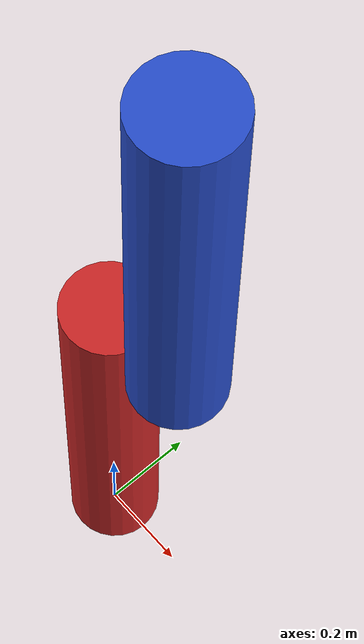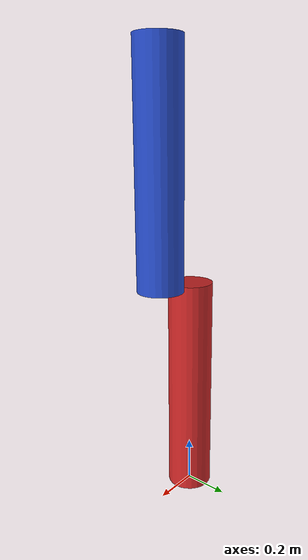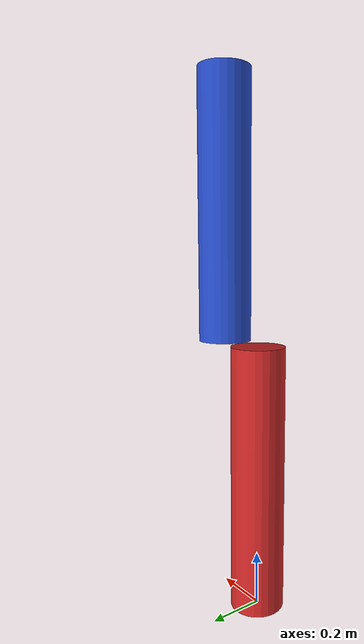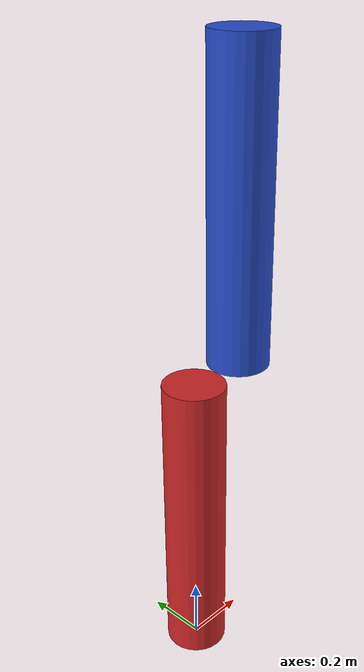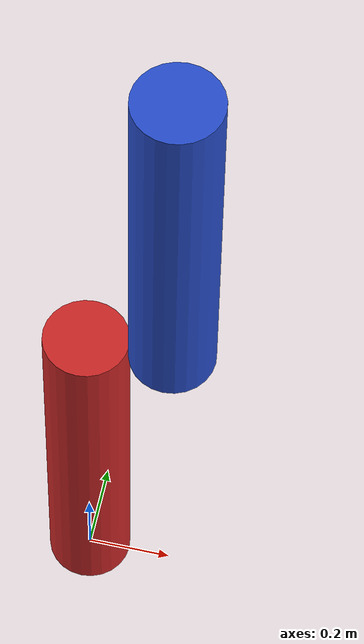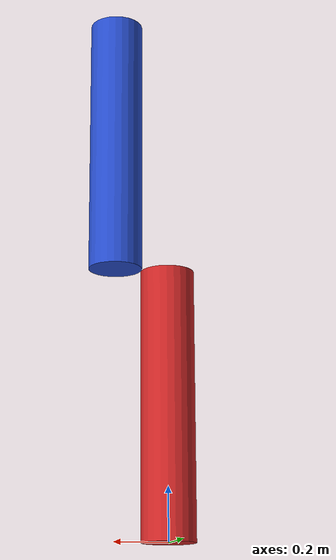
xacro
<?xml version="1.0"?>
<robot name="2dof_manipulator" xmlns:xacro="http://www.ros.org/wiki/xacro">

    <!-- Define Properties -->
    <xacro:property name="base_radius" value="0.1"/>
    <xacro:property name="base_height" value="1"/>
    <xacro:property name="link1_radius" value="0.1"/>
    <xacro:property name="link1_length" value="1"/>
    <xacro:property name="link2_radius" value="0.1"/>
    <xacro:property name="link2_length" value="1"/>
    <xacro:property name="gripper_width" value="0.2"/>
    <xacro:property name="gripper_height" value="0.1"/>
    <xacro:property name="gripper_depth" value="0.1"/>

    <!-- Base Link -->
    <link name="base_link" />

    <!-- Joint 1 (Revolute - Rotates around Z) -->
    <joint name="joint1" type="revolute">
        <parent link="base_link"/>
        <child link="link1"/>
        <origin xyz="0 0 0" rpy="0 0 0"/>
        <axis xyz="0 0 1"/> <!-- Rotation around Z-axis -->
        <limit lower="${-pi}" upper="${pi}"  effort="10.0" velocity="1.0"/>
    </joint>

    <!-- Link 1 -->
    <link name="link1">
        <visual>
            <geometry>
                <cylinder radius="${link1_radius}" length="${link1_length}"/>
            </geometry>
            <origin xyz="0 0 ${link1_length/2}" rpy="0 0 0"/>
            <material name="red" />
        </visual>
        <collision>
            <geometry>
                <cylinder radius="${link1_radius}" length="${link1_length}"/>
            </geometry>
            <origin xyz="0 0 ${link1_length/2}" rpy="0 0 0"/>
        </collision>
        <xacro:cylinder_inertia m="0.4" r="${link1_radius}" h="${link1_length}"
                                 xyz="0 0 0" rpy="0 0 0" />
    </link>

    <!-- Joint 2 (Revolute - Rotates around Y) -->
    <joint name="joint2" type="revolute">
        <parent link="link1"/>
        <child link="link2"/>
        <origin xyz="${link1_radius + link2_radius} 0 ${link1_length}" rpy="0 0 0"/>
        <axis xyz="1 0 0"/> <!-- Rotation around Y-axis -->
        <limit lower="${-pi/2}"  upper="${pi/2}"  effort="10.0" velocity="1.0"/>
    </joint>

    <!-- Link 2 -->
    <link name="link2">
        <visual>
            <geometry>
                <cylinder radius="${link2_radius}" length="${link2_length}"/>
            </geometry>
            <origin xyz="0 0 ${link2_length/2}" rpy="0 0 0"/>
            <material name="blue" />
        </visual>
        <collision>
            <geometry>
                <cylinder radius="${link2_radius}" length="${link2_length}"/>
            </geometry>
            <origin xyz="0 0 ${link2_length/2}" rpy="0 0 0"/>
        </collision>
        <xacro:cylinder_inertia m="0.3" r="${link2_radius}" h="${link2_length}"
                                 xyz="0 0 0" rpy="0 0 0" />
    </link>

</robot>
